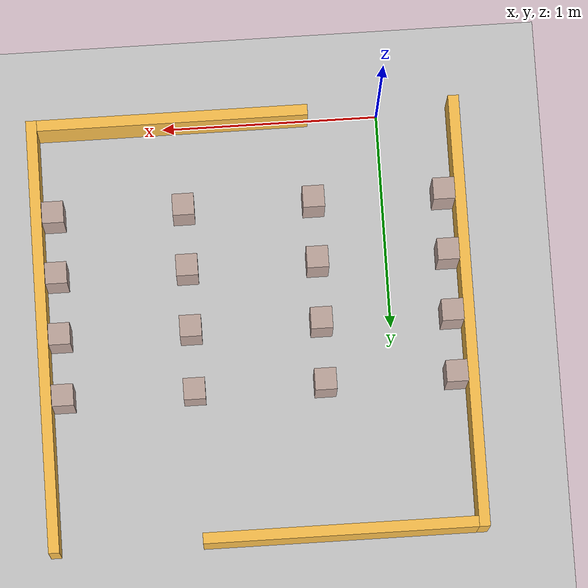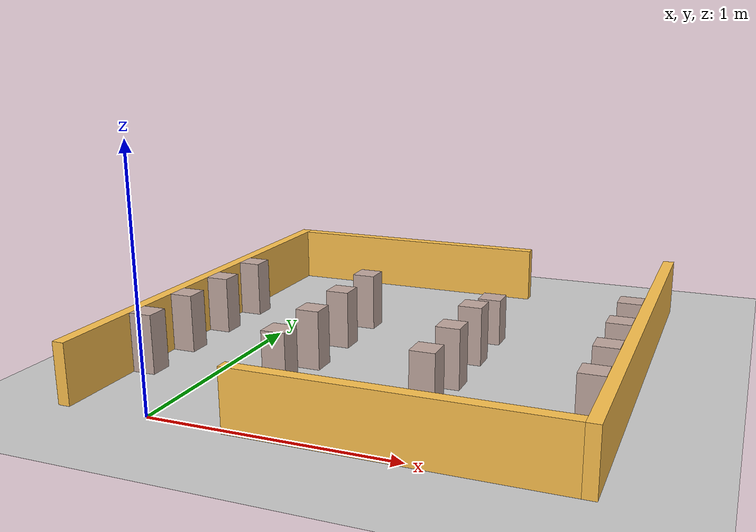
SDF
<sdf version="1.7">
 <world name="default">
  <scene><ambient>0.4 0.4 0.4 1</ambient><background>0.7 0.7 0.7 1</background><shadows>1</shadows></scene>
  <light name="sun" type="directional">
   <pose>0 0 10 0 -0 0</pose>
   <diffuse>0.8 0.8 0.8 1</diffuse>
   <specular>0.2 0.2 0.2 1</specular>
   <attenuation>
    <range>1000</range>
    <constant>0.9</constant>
    <linear>0.01</linear>
    <quadratic>0.001</quadratic>
   </attenuation>
   <direction>-0.5 0.1 -0.9</direction>
   <spot><inner_angle>0</inner_angle><outer_angle>0</outer_angle><falloff>0</falloff></spot>
  </light>
  <model name="ground_plane">
   <static>1</static>
   <link name="link">
    <collision name="collision">
     <geometry><plane><normal>0 0 1</normal><size>100 100</size></plane></geometry>
     <surface><friction><ode><mu>100</mu><mu2>50</mu2></ode></friction></surface>
    </collision>
    <visual name="visual">
     <cast_shadows>0</cast_shadows>
     <geometry><plane><normal>0 0 1</normal><size>100 100</size></plane></geometry>
     <material>
      <script><uri>file://media/materials/scripts/gazebo.material</uri><name>Gazebo/Grey</name></script>
     </material>
    </visual>
   </link>
  </model>
  <physics type="ode">
   <real_time_update_rate>1000</real_time_update_rate>
   <max_step_size>0.001</max_step_size>
   <real_time_factor>1</real_time_factor>
   <ode>
    <solver>
     <type>quick</type>
     <iters>150</iters>
     <precon_iters>0</precon_iters>
     <sor>1.4</sor>
     <use_dynamic_moi_rescaling>1</use_dynamic_moi_rescaling>
    </solver>
    <constraints>
     <cfm>1e-05</cfm>
     <erp>0.2</erp>
     <contact_max_correcting_vel>2000</contact_max_correcting_vel>
     <contact_surface_layer>0.01</contact_surface_layer>
    </constraints>
   </ode>
  </physics>
  <gravity>0 0 -9.8</gravity>
  <magnetic_field>6e-06 2.3e-05 -4.2e-05</magnetic_field>
  <atmosphere type="adiabatic"/>
  <spherical_coordinates>
   <surface_model>EARTH_WGS84</surface_model>
   <latitude_deg>0</latitude_deg>
   <longitude_deg>0</longitude_deg>
   <elevation>0</elevation>
   <heading_deg>0</heading_deg>
  </spherical_coordinates>
  <model name="Untitled_tree">
   <pose>0.623724 0.607833 0 0 -0 0</pose>
   <link name="Wall_13">
    <collision name="Wall_13_Collision">
     <geometry><box><size>0.1 0.1 0.25</size></box></geometry>
     <pose>0 0 0.125 0 -0 0</pose>
    </collision>
    <visual name="Wall_13_Visual">
     <pose>0 0 0.125 0 -0 0</pose>
     <geometry><box><size>0.1 0.1 0.25</size></box></geometry>
     <material>
      <script><uri>file://media/materials/scripts/gazebo.material</uri><name>Gazebo/Grey</name></script>
      <ambient>0.760784 0.662745 0.627451 1</ambient>
     </material>
     <meta><layer>0</layer></meta>
    </visual>
    <pose>-0.9 -0.1995 0 0 -0 0</pose>
   </link>
   <link name="Wall_15">
    <collision name="Wall_15_Collision">
     <geometry><box><size>0.1 0.1 0.25</size></box></geometry>
     <pose>0 0 0.125 0 -0 0</pose>
    </collision>
    <visual name="Wall_15_Visual">
     <pose>0 0 0.125 0 -0 0</pose>
     <geometry><box><size>0.1 0.1 0.25</size></box></geometry>
     <material>
      <script><uri>file://media/materials/scripts/gazebo.material</uri><name>Gazebo/Grey</name></script>
      <ambient>0.760784 0.662745 0.627451 1</ambient>
     </material>
     <meta><layer>0</layer></meta>
    </visual>
    <pose>-0.9 0.0835 0 0 -0 0</pose>
   </link>
   <link name="Wall_17">
    <collision name="Wall_17_Collision">
     <geometry><box><size>0.1 0.1 0.25</size></box></geometry>
     <pose>0 0 0.125 0 -0 0</pose>
    </collision>
    <visual name="Wall_17_Visual">
     <pose>0 0 0.125 0 -0 0</pose>
     <geometry><box><size>0.1 0.1 0.25</size></box></geometry>
     <material>
      <script><uri>file://media/materials/scripts/gazebo.material</uri><name>Gazebo/Grey</name></script>
      <ambient>0.760784 0.662745 0.627451 1</ambient>
     </material>
     <meta><layer>0</layer></meta>
    </visual>
    <pose>-0.9 0.3665 0 0 -0 1.5708</pose>
   </link>
   <link name="Wall_19">
    <collision name="Wall_19_Collision">
     <geometry><box><size>0.1 0.1 0.25</size></box></geometry>
     <pose>0 0 0.125 0 -0 0</pose>
    </collision>
    <visual name="Wall_19_Visual">
     <pose>0 0 0.125 0 -0 0</pose>
     <geometry><box><size>0.1 0.1 0.25</size></box></geometry>
     <material>
      <script><uri>file://media/materials/scripts/gazebo.material</uri><name>Gazebo/Grey</name></script>
      <ambient>0.760784 0.662745 0.627451 1</ambient>
     </material>
     <meta><layer>0</layer></meta>
    </visual>
    <pose>-0.9 0.6495 0 0 -0 0</pose>
   </link>
   <link name="Wall_21">
    <collision name="Wall_21_Collision">
     <geometry><box><size>0.1 0.1 0.25</size></box></geometry>
     <pose>0 0 0.125 0 -0 0</pose>
    </collision>
    <visual name="Wall_21_Visual">
     <pose>0 0 0.125 0 -0 0</pose>
     <geometry><box><size>0.1 0.1 0.25</size></box></geometry>
     <material>
      <script><uri>file://media/materials/scripts/gazebo.material</uri><name>Gazebo/Grey</name></script>
      <ambient>0.760784 0.662745 0.627451 1</ambient>
     </material>
     <meta><layer>0</layer></meta>
    </visual>
    <pose>-0.3 -0.1995 0 0 -0 0</pose>
   </link>
   <link name="Wall_23">
    <collision name="Wall_23_Collision">
     <geometry><box><size>0.1 0.1 0.25</size></box></geometry>
     <pose>0 0 0.125 0 -0 0</pose>
    </collision>
    <visual name="Wall_23_Visual">
     <pose>0 0 0.125 0 -0 0</pose>
     <geometry><box><size>0.1 0.1 0.25</size></box></geometry>
     <material>
      <script><uri>file://media/materials/scripts/gazebo.material</uri><name>Gazebo/Grey</name></script>
      <ambient>0.760784 0.662745 0.627451 1</ambient>
     </material>
     <meta><layer>0</layer></meta>
    </visual>
    <pose>-0.3 0.0835 0 0 -0 0</pose>
   </link>
   <link name="Wall_25">
    <collision name="Wall_25_Collision">
     <geometry><box><size>0.1 0.1 0.25</size></box></geometry>
     <pose>0 0 0.125 0 -0 0</pose>
    </collision>
    <visual name="Wall_25_Visual">
     <pose>0 0 0.125 0 -0 0</pose>
     <geometry><box><size>0.1 0.1 0.25</size></box></geometry>
     <material>
      <script><uri>file://media/materials/scripts/gazebo.material</uri><name>Gazebo/Grey</name></script>
      <ambient>0.760784 0.662745 0.627451 1</ambient>
     </material>
     <meta><layer>0</layer></meta>
    </visual>
    <pose>-0.3 0.3665 0 0 -0 0</pose>
   </link>
   <link name="Wall_27">
    <collision name="Wall_27_Collision">
     <geometry><box><size>0.1 0.1 0.25</size></box></geometry>
     <pose>0 0 0.125 0 -0 0</pose>
    </collision>
    <visual name="Wall_27_Visual">
     <pose>0 0 0.125 0 -0 0</pose>
     <geometry><box><size>0.1 0.1 0.25</size></box></geometry>
     <material>
      <script><uri>file://media/materials/scripts/gazebo.material</uri><name>Gazebo/Grey</name></script>
      <ambient>0.760784 0.662745 0.627451 1</ambient>
     </material>
     <meta><layer>0</layer></meta>
    </visual>
    <pose>-0.3 0.6495 0 0 -0 0</pose>
   </link>
   <link name="Wall_29">
    <collision name="Wall_29_Collision">
     <geometry><box><size>0.1 0.1 0.25</size></box></geometry>
     <pose>0 0 0.125 0 -0 0</pose>
    </collision>
    <visual name="Wall_29_Visual">
     <pose>0 0 0.125 0 -0 0</pose>
     <geometry><box><size>0.1 0.1 0.25</size></box></geometry>
     <material>
      <script><uri>file://media/materials/scripts/gazebo.material</uri><name>Gazebo/Grey</name></script>
      <ambient>0.760784 0.662745 0.627451 1</ambient>
     </material>
     <meta><layer>0</layer></meta>
    </visual>
    <pose>0.3 -0.1995 0 0 -0 0</pose>
   </link>
   <link name="Wall_31">
    <collision name="Wall_31_Collision">
     <geometry><box><size>0.1 0.1 0.25</size></box></geometry>
     <pose>0 0 0.125 0 -0 0</pose>
    </collision>
    <visual name="Wall_31_Visual">
     <pose>0 0 0.125 0 -0 0</pose>
     <geometry><box><size>0.1 0.1 0.25</size></box></geometry>
     <material>
      <script><uri>file://media/materials/scripts/gazebo.material</uri><name>Gazebo/Grey</name></script>
      <ambient>0.760784 0.662745 0.627451 1</ambient>
     </material>
     <meta><layer>0</layer></meta>
    </visual>
    <pose>0.3 0.0835 0 0 -0 0</pose>
   </link>
   <link name="Wall_33">
    <collision name="Wall_33_Collision">
     <geometry><box><size>0.1 0.1 0.25</size></box></geometry>
     <pose>0 0 0.125 0 -0 0</pose>
    </collision>
    <visual name="Wall_33_Visual">
     <pose>0 0 0.125 0 -0 0</pose>
     <geometry><box><size>0.1 0.1 0.25</size></box></geometry>
     <material>
      <script><uri>file://media/materials/scripts/gazebo.material</uri><name>Gazebo/Grey</name></script>
      <ambient>0.760784 0.662745 0.627451 1</ambient>
     </material>
     <meta><layer>0</layer></meta>
    </visual>
    <pose>0.3 0.3665 0 0 -0 0</pose>
   </link>
   <link name="Wall_35">
    <collision name="Wall_35_Collision">
     <geometry><box><size>0.1 0.1 0.25</size></box></geometry>
     <pose>0 0 0.075 0 -0 0</pose>
    </collision>
    <visual name="Wall_35_Visual">
     <pose>0 0 0.075 0 -0 0</pose>
     <geometry><box><size>0.1 0.1 0.25</size></box></geometry>
     <material>
      <script><uri>file://media/materials/scripts/gazebo.material</uri><name>Gazebo/Grey</name></script>
      <ambient>0.760784 0.662745 0.627451 1</ambient>
     </material>
     <meta><layer>0</layer></meta>
    </visual>
    <pose>0.3 0.6495 0 0 -0 0</pose>
   </link>
   <link name="Wall_37">
    <collision name="Wall_37_Collision">
     <geometry><box><size>0.1 0.1 0.25</size></box></geometry>
     <pose>0 0 0.125 0 -0 0</pose>
    </collision>
    <visual name="Wall_37_Visual">
     <pose>0 0 0.125 0 -0 0</pose>
     <geometry><box><size>0.1 0.1 0.25</size></box></geometry>
     <material>
      <script><uri>file://media/materials/scripts/gazebo.material</uri><name>Gazebo/Grey</name></script>
      <ambient>0.760784 0.662745 0.627451 1</ambient>
     </material>
     <meta><layer>0</layer></meta>
    </visual>
    <pose>0.9 -0.1995 0 0 -0 0</pose>
   </link>
   <link name="Wall_39">
    <collision name="Wall_39_Collision">
     <geometry><box><size>0.1 0.1 0.25</size></box></geometry>
     <pose>0 0 0.125 0 -0 0</pose>
    </collision>
    <visual name="Wall_39_Visual">
     <pose>0 0 0.125 0 -0 0</pose>
     <geometry><box><size>0.1 0.1 0.25</size></box></geometry>
     <material>
      <script><uri>file://media/materials/scripts/gazebo.material</uri><name>Gazebo/Grey</name></script>
      <ambient>0.760784 0.662745 0.627451 1</ambient>
     </material>
     <meta><layer>0</layer></meta>
    </visual>
    <pose>0.9 0.0835 0 0 -0 0</pose>
   </link>
   <link name="Wall_41">
    <collision name="Wall_41_Collision">
     <geometry><box><size>0.1 0.1 0.25</size></box></geometry>
     <pose>0 0 0.125 0 -0 0</pose>
    </collision>
    <visual name="Wall_41_Visual">
     <pose>0 0 0.125 0 -0 0</pose>
     <geometry><box><size>0.1 0.1 0.25</size></box></geometry>
     <material>
      <script><uri>file://media/materials/scripts/gazebo.material</uri><name>Gazebo/Grey</name></script>
      <ambient>0.760784 0.662745 0.627451 1</ambient>
     </material>
     <meta><layer>0</layer></meta>
    </visual>
    <pose>0.9 0.3665 0 0 -0 0</pose>
   </link>
   <link name="Wall_43">
    <collision name="Wall_43_Collision">
     <geometry><box><size>0.1 0.1 0.25</size></box></geometry>
     <pose>0 0 0.125 0 -0 0</pose>
    </collision>
    <visual name="Wall_43_Visual">
     <pose>0 0 0.125 0 -0 0</pose>
     <geometry><box><size>0.1 0.1 0.25</size></box></geometry>
     <material>
      <script><uri>file://media/materials/scripts/gazebo.material</uri><name>Gazebo/Grey</name></script>
      <ambient>0.760784 0.662745 0.627451 1</ambient>
     </material>
     <meta><layer>0</layer></meta>
    </visual>
    <pose>0.9 0.6495 0 0 -0 0</pose>
   </link>
   <static>1</static>
  </model>
  <model name="Untitled_frame_0">
   <pose>0.625 0.975 0 0 -0 0</pose>
   <link name="Wall_1">
    <collision name="Wall_1_Collision">
     <geometry><box><size>2 0.05 0.25</size></box></geometry>
     <pose>0 0 0.125 0 -0 0</pose>
    </collision>
    <visual name="Wall_1_Visual">
     <pose>0 0 0.125 0 -0 0</pose>
     <geometry><box><size>2 0.05 0.25</size></box></geometry>
     <material>
      <script><uri>file://media/materials/scripts/gazebo.material</uri><name>Gazebo/Grey</name></script>
      <ambient>1 0.764706 0.305882 1</ambient>
     </material>
     <meta><layer>0</layer></meta>
    </visual>
    <pose>-0.975 0 0 0 -0 1.5708</pose>
   </link>
   <link name="Wall_3">
    <collision name="Wall_3_Collision">
     <geometry><box><size>2 0.05 0.25</size></box></geometry>
     <pose>0 0 0.125 0 -0 0</pose>
    </collision>
    <visual name="Wall_3_Visual">
     <pose>0 0 0.125 0 -0 0</pose>
     <geometry><box><size>2 0.05 0.25</size></box></geometry>
     <material>
      <script><uri>file://media/materials/scripts/gazebo.material</uri><name>Gazebo/Grey</name></script>
      <ambient>1 0.764706 0.305882 1</ambient>
     </material>
     <meta><layer>0</layer></meta>
    </visual>
    <pose>0.975 0 0 0 -0 1.5708</pose>
   </link>
   <link name="Wall_5">
    <collision name="Wall_5_Collision">
     <geometry><box><size>1.25 0.05 0.25</size></box></geometry>
     <pose>0 0 0.125 0 -0 0</pose>
    </collision>
    <visual name="Wall_5_Visual">
     <pose>0 0 0.125 0 -0 0</pose>
     <geometry><box><size>1.25 0.05 0.25</size></box></geometry>
     <material>
      <script><uri>file://media/materials/scripts/gazebo.material</uri><name>Gazebo/Grey</name></script>
      <ambient>1 0.764706 0.305882 1</ambient>
     </material>
     <meta><layer>0</layer></meta>
    </visual>
    <pose>-0.325 0.975 0 0 -0 0</pose>
   </link>
   <link name="Wall_7">
    <collision name="Wall_7_Collision">
     <geometry><box><size>1.25 0.05 0.25</size></box></geometry>
     <pose>0 0 0.125 0 -0 0</pose>
    </collision>
    <visual name="Wall_7_Visual">
     <pose>0 0 0.125 0 -0 0</pose>
     <geometry><box><size>1.25 0.05 0.25</size></box></geometry>
     <material>
      <script><uri>file://media/materials/scripts/gazebo.material</uri><name>Gazebo/Grey</name></script>
      <ambient>1 0.764706 0.305882 1</ambient>
     </material>
     <meta><layer>0</layer></meta>
    </visual>
    <pose>0.325 -0.975 0 0 -0 3.14159</pose>
   </link>
   <static>1</static>
  </model>
 </world>
</sdf>
